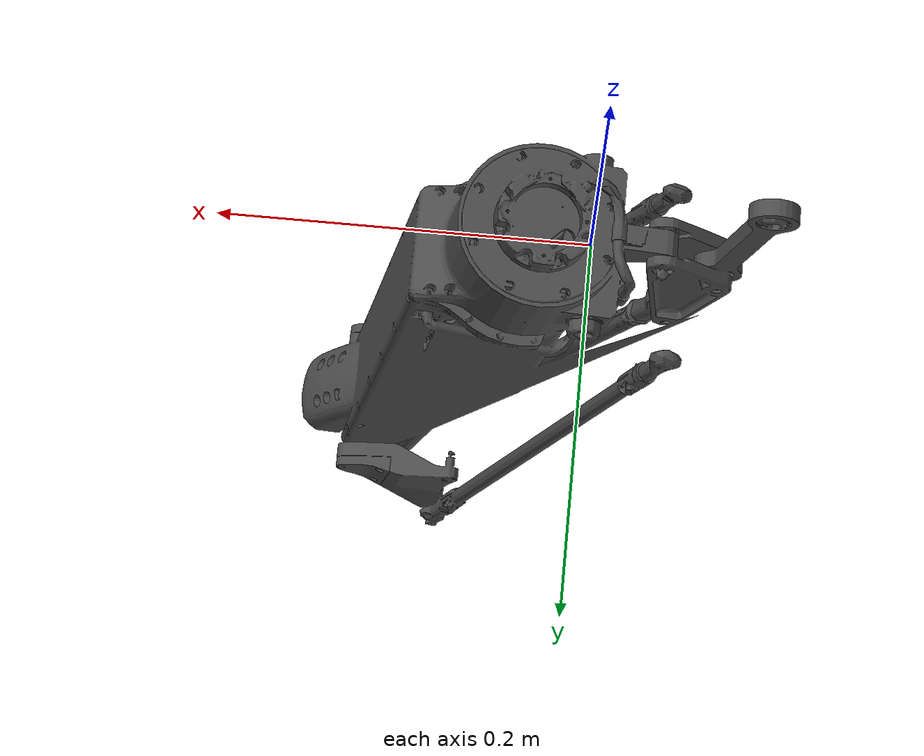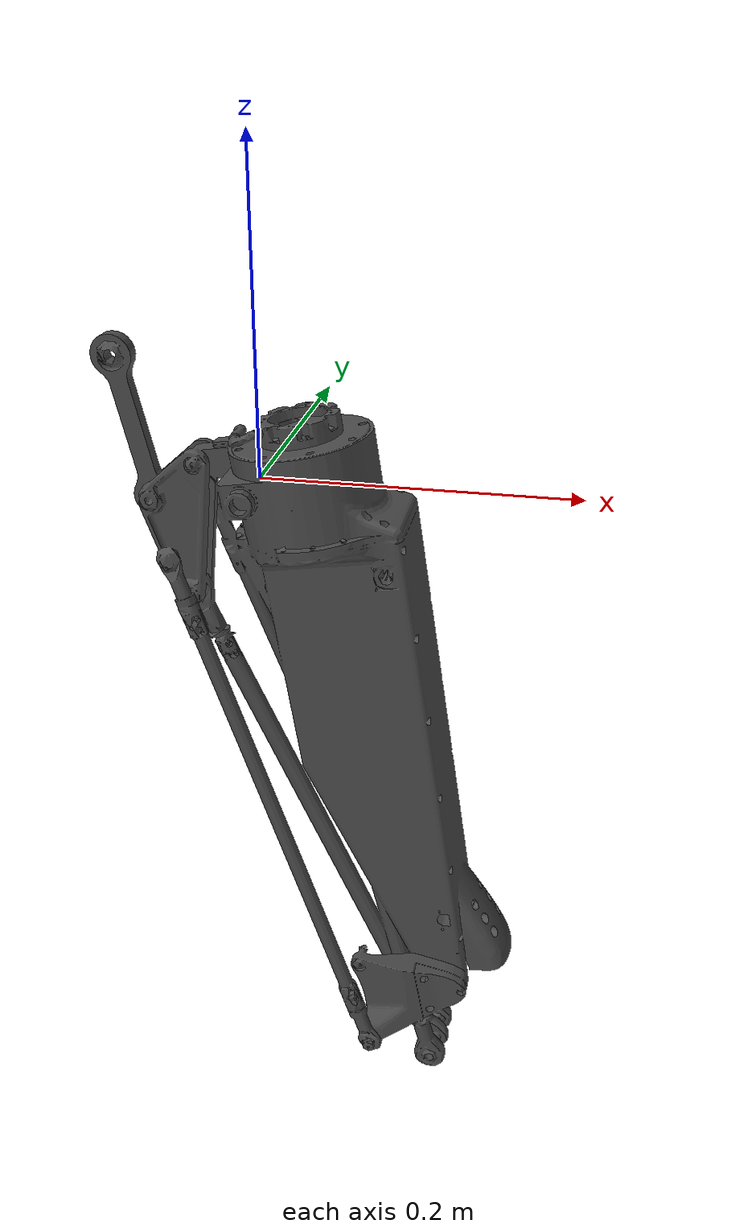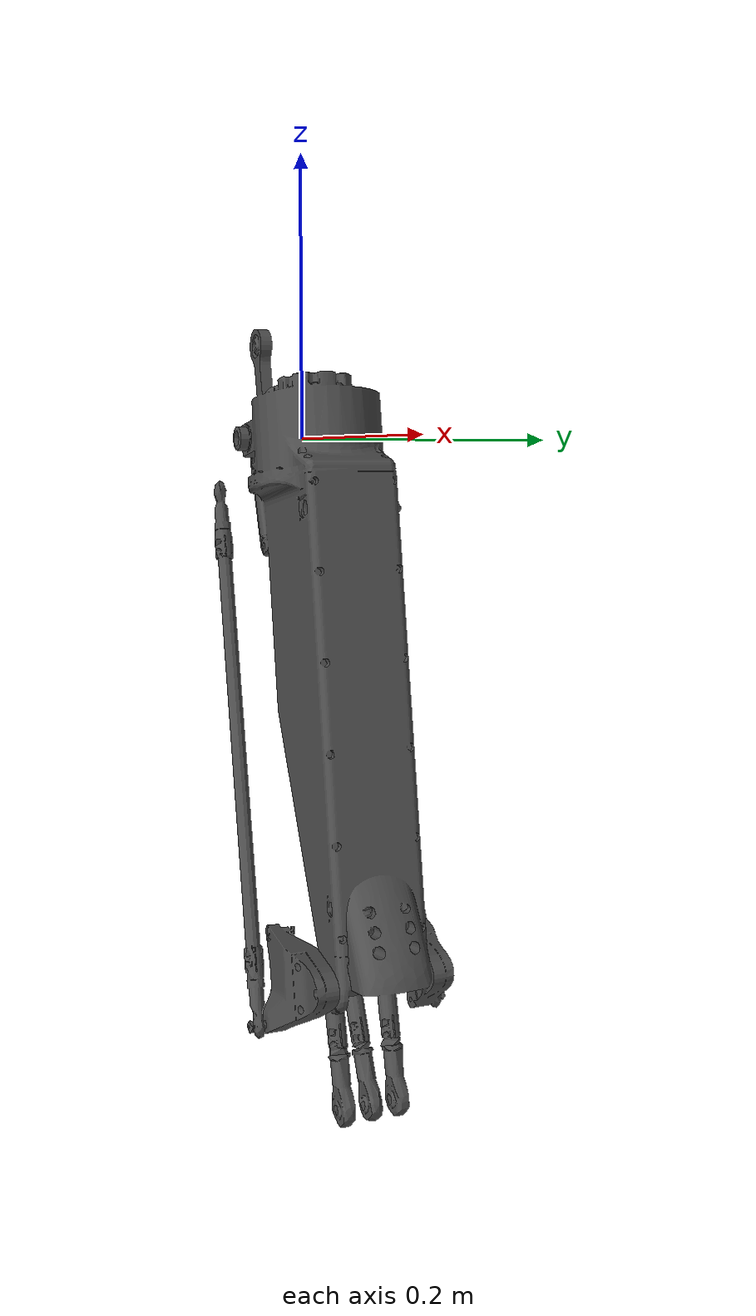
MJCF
<mujoco model="leg_femur_link">
  <default>
    <default class="visual">
      <geom group="2" type="mesh" contype="0" conaffinity="0"/>
    </default>
    <default class="collision">
      <geom group="3" type="mesh"/>
    </default>
  </default>
  <asset>
    <material name="mtl_m9" specular="0.20000000000000004" shininess="1.0" rgba="0.29803922 0.29803922 0.29803922 1.0"/>
    <mesh file="leg_femur_link.obj"/>
  </asset>
  <worldbody>
    <body name="leg_femur_link">
      <geom material="mtl_m9" mesh="leg_femur_link" class="visual"/>
      <geom mesh="leg_femur_link" class="collision"/>
    </body>
  </worldbody>
</mujoco>
